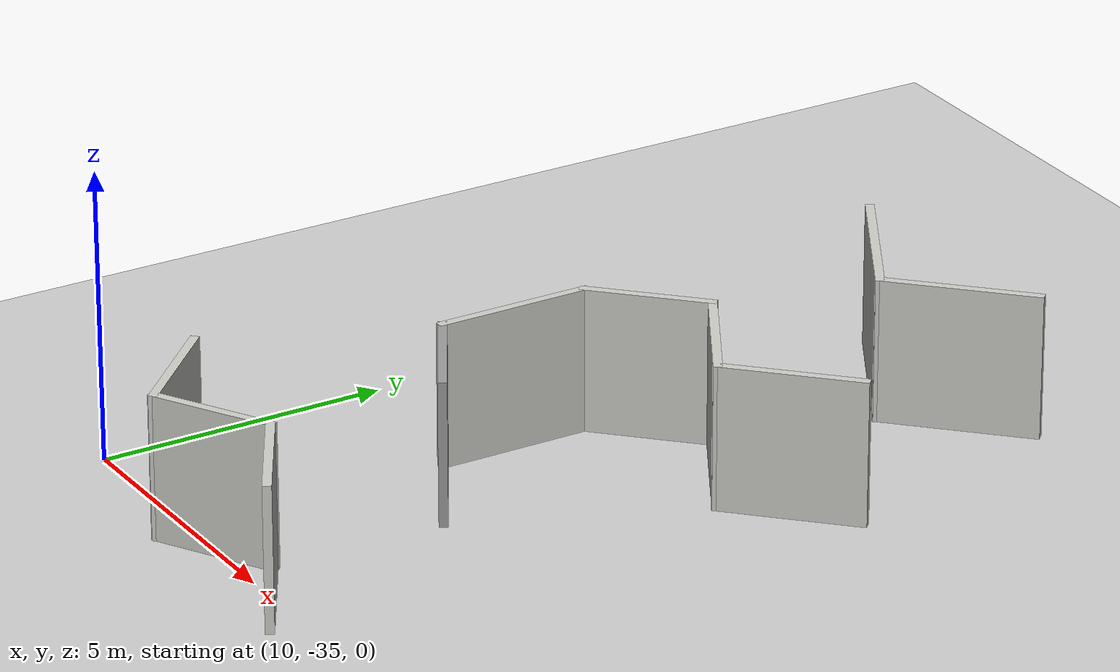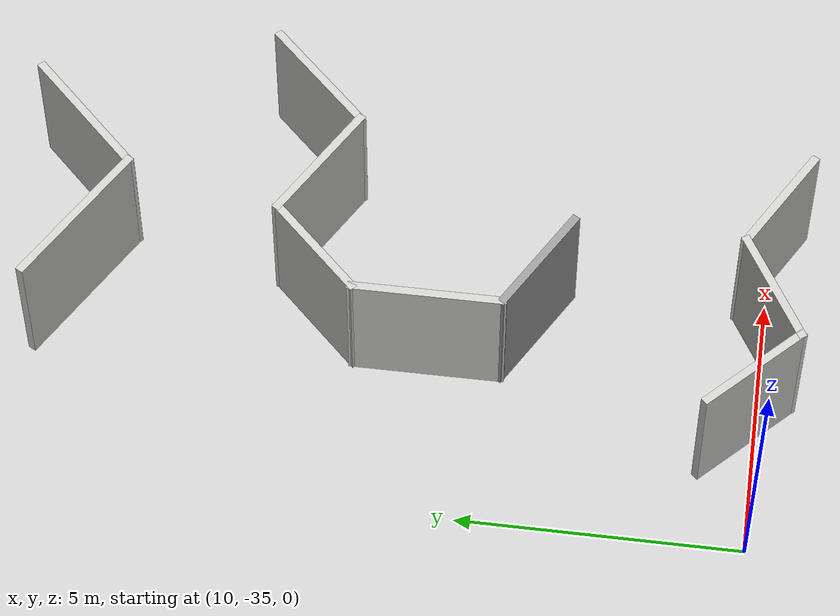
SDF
<sdf version="1.6">
 <world name="default">
  <model name="ground_plane">
   <pose>50 50 0 0 -0 0</pose>
   <static>1</static>
   <link name="link">
    <collision name="collision">
     <geometry><plane><normal>0 0 1</normal><size>100 100</size></plane></geometry>
     <surface><friction><ode><mu>100</mu><mu2>50</mu2></ode></friction></surface>
    </collision>
    <visual name="visual">
     <cast_shadows>0</cast_shadows>
     <geometry><plane><normal>0 0 1</normal><size>100 100</size></plane></geometry>
     <material>
      <script><uri>file://media/materials/scripts/gazebo.material</uri><name>Gazebo/Grey</name></script>
     </material>
    </visual>
   </link>
  </model>
  <model name="maze_1">
   <pose>17.3845 3.82743 0 0 -0 1.57331</pose>
   <link name="Wall_119">
    <collision name="Wall_119_Collision">
     <geometry><box><size>2.75 0.15 2.5</size></box></geometry>
     <pose>0 0 1.25 0 -0 0</pose>
    </collision>
    <visual name="Wall_119_Visual">
     <pose>0 0 1.25 0 -0 0</pose>
     <geometry><box><size>2.75 0.15 2.5</size></box></geometry>
     <material>
      <script><uri>file://media/materials/scripts/gazebo.material</uri><name>Gazebo/CeilingTiled</name></script>
      <ambient>1 1 1 1</ambient>
     </material>
     <meta><layer>0</layer></meta>
    </visual>
    <pose>-26.5339 1.45409 0 0 -0 2.35619</pose>
   </link>
   <link name="Wall_120">
    <collision name="Wall_120_Collision">
     <geometry><box><size>3 0.15 2.5</size></box></geometry>
     <pose>0 0 1.25 0 -0 0</pose>
    </collision>
    <visual name="Wall_120_Visual">
     <pose>0 0 1.25 0 -0 0</pose>
     <geometry><box><size>3 0.15 2.5</size></box></geometry>
     <material>
      <script><uri>file://media/materials/scripts/gazebo.material</uri><name>Gazebo/CeilingTiled</name></script>
      <ambient>1 1 1 1</ambient>
     </material>
     <meta><layer>0</layer></meta>
    </visual>
    <pose>-26.7407 3.60742 0 0 -0 1.0472</pose>
   </link>
   <link name="Wall_72">
    <collision name="Wall_72_Collision">
     <geometry><box><size>2.25 0.15 2.5</size></box></geometry>
     <pose>0 0 1.25 0 -0 0</pose>
    </collision>
    <visual name="Wall_72_Visual">
     <pose>0 0 1.25 0 -0 0</pose>
     <geometry><box><size>2.25 0.15 2.5</size></box></geometry>
     <material>
      <script><uri>file://media/materials/scripts/gazebo.material</uri><name>Gazebo/CeilingTiled</name></script>
      <ambient>1 1 1 1</ambient>
     </material>
     <meta><layer>0</layer></meta>
    </visual>
    <pose>-38.853 1.83437 0 0 -0 1.0472</pose>
   </link>
   <link name="Wall_73">
    <collision name="Wall_73_Collision">
     <geometry><box><size>2.25 0.15 2.5</size></box></geometry>
     <pose>0 0 1.25 0 -0 0</pose>
    </collision>
    <visual name="Wall_73_Visual">
     <pose>0 0 1.25 0 -0 0</pose>
     <geometry><box><size>2.25 0.15 2.5</size></box></geometry>
     <material>
      <script><uri>file://media/materials/scripts/gazebo.material</uri><name>Gazebo/CeilingTiled</name></script>
      <ambient>1 1 1 1</ambient>
     </material>
     <meta><layer>0</layer></meta>
    </visual>
    <pose>-38.853 3.65302 0 0 -0 2.0944</pose>
   </link>
   <link name="Wall_74">
    <collision name="Wall_74_Collision">
     <geometry><box><size>2.25 0.15 2.5</size></box></geometry>
     <pose>0 0 1.25 0 -0 0</pose>
    </collision>
    <visual name="Wall_74_Visual">
     <pose>0 0 1.25 0 -0 0</pose>
     <geometry><box><size>2.25 0.15 2.5</size></box></geometry>
     <material>
      <script><uri>file://media/materials/scripts/gazebo.material</uri><name>Gazebo/CeilingTiled</name></script>
      <ambient>1 1 1 1</ambient>
     </material>
     <meta><layer>0</layer></meta>
    </visual>
    <pose>-38.6356 5.30481 0 0 -0 0.785398</pose>
   </link>
   <link name="Wall_83">
    <collision name="Wall_83_Collision">
     <geometry><box><size>2.25 0.15 2.5</size></box></geometry>
     <pose>0 0 1.25 0 -0 0</pose>
    </collision>
    <visual name="Wall_83_Visual">
     <pose>0 0 1.25 0 -0 0</pose>
     <geometry><box><size>2.25 0.15 2.5</size></box></geometry>
     <material>
      <script><uri>file://media/materials/scripts/gazebo.material</uri><name>Gazebo/Grey</name></script>
      <ambient>1 1 1 1</ambient>
     </material>
     <meta><layer>0</layer></meta>
    </visual>
    <pose>-34.8079 3.59924 0 0 -0 1.0472</pose>
   </link>
   <link name="Wall_84">
    <collision name="Wall_84_Collision">
     <geometry><box><size>2.75 0.15 2.5</size></box></geometry>
     <pose>0 0 1.25 0 -0 0</pose>
    </collision>
    <visual name="Wall_84_Visual">
     <pose>0 0 1.25 0 -0 0</pose>
     <geometry><box><size>2.75 0.15 2.5</size></box></geometry>
     <material>
      <script><uri>file://media/materials/scripts/gazebo.material</uri><name>Gazebo/CeilingTiled</name></script>
      <ambient>1 1 1 1</ambient>
     </material>
     <meta><layer>0</layer></meta>
    </visual>
    <pose>-32.9829 4.50857 0 0 -0 0</pose>
   </link>
   <link name="Wall_85">
    <collision name="Wall_85_Collision">
     <geometry><box><size>2.25 0.15 2.5</size></box></geometry>
     <pose>0 0 1.25 0 -0 0</pose>
    </collision>
    <visual name="Wall_85_Visual">
     <pose>0 0 1.25 0 -0 0</pose>
     <geometry><box><size>2.25 0.15 2.5</size></box></geometry>
     <material>
      <script><uri>file://media/materials/scripts/gazebo.material</uri><name>Gazebo/CeilingTiled</name></script>
      <ambient>1 1 1 1</ambient>
     </material>
     <meta><layer>0</layer></meta>
    </visual>
    <pose>-30.9404 3.76611 0 0 -0 -0.785398</pose>
   </link>
   <link name="Wall_86">
    <collision name="Wall_86_Collision">
     <geometry><box><size>2.5 0.15 2.5</size></box></geometry>
     <pose>0 0 1.25 0 -0 0</pose>
    </collision>
    <visual name="Wall_86_Visual">
     <pose>0 0 1.25 0 -0 0</pose>
     <geometry><box><size>2.5 0.15 2.5</size></box></geometry>
     <material>
      <script><uri>file://media/materials/scripts/gazebo.material</uri><name>Gazebo/CeilingTiled</name></script>
      <ambient>1 1 1 1</ambient>
     </material>
     <meta><layer>0</layer></meta>
    </visual>
    <pose>-30.7855 2.00606 0 0 -0 -2.0944</pose>
   </link>
   <link name="Wall_87">
    <collision name="Wall_87_Collision">
     <geometry><box><size>2.5 0.15 2.5</size></box></geometry>
     <pose>0 0 1.25 0 -0 0</pose>
    </collision>
    <visual name="Wall_87_Visual">
     <pose>0 0 1.25 0 -0 0</pose>
     <geometry><box><size>2.5 0.15 2.5</size></box></geometry>
     <material>
      <script><uri>file://media/materials/scripts/gazebo.material</uri><name>Gazebo/CeilingTiled</name></script>
      <ambient>1 1 1 1</ambient>
     </material>
     <meta><layer>0</layer></meta>
    </visual>
    <pose>-30.5421 0.157634 0 0 -0 -0.785398</pose>
   </link>
   <static>1</static>
  </model>
 </world>
</sdf>
